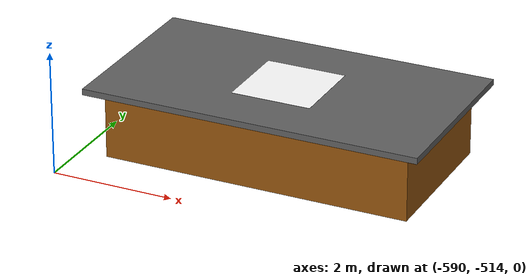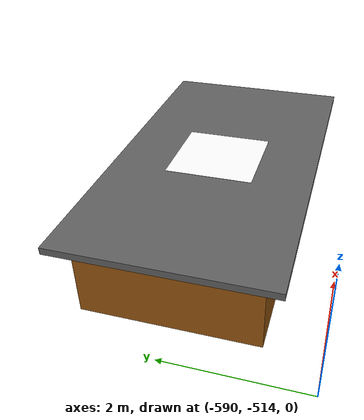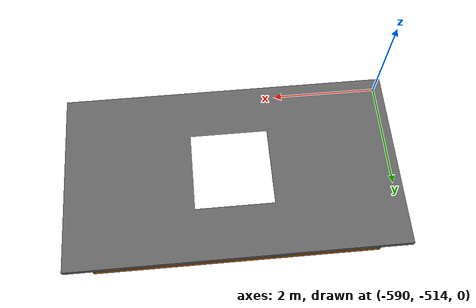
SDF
<sdf version="1.9">
 <world name="applepark_city_uav">
  <include><uri>model://trailer_aruco</uri><name>trailer</name><pose>-587 -512 0 0 0 0</pose></include>
 </world>
</sdf>
